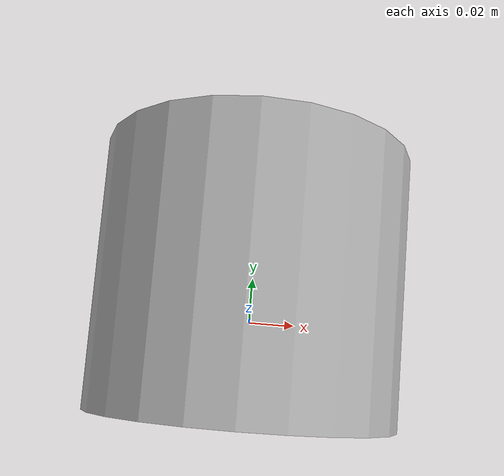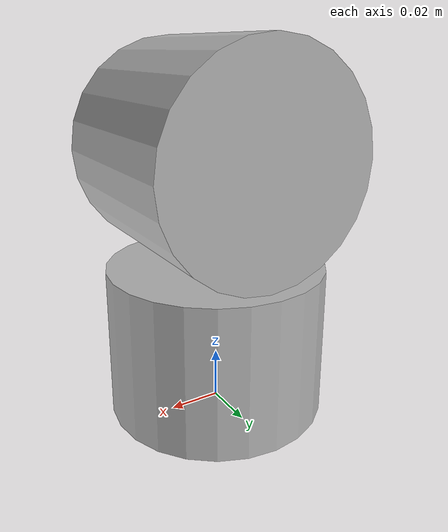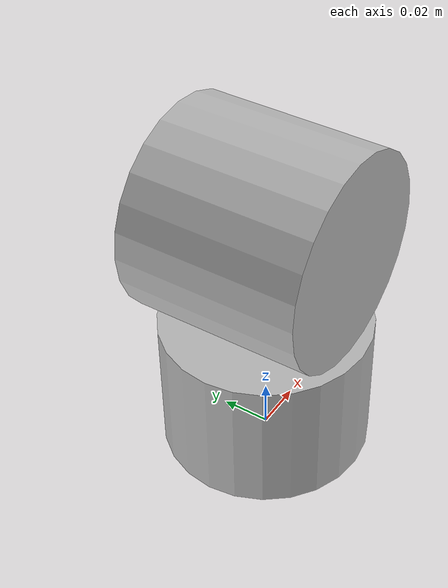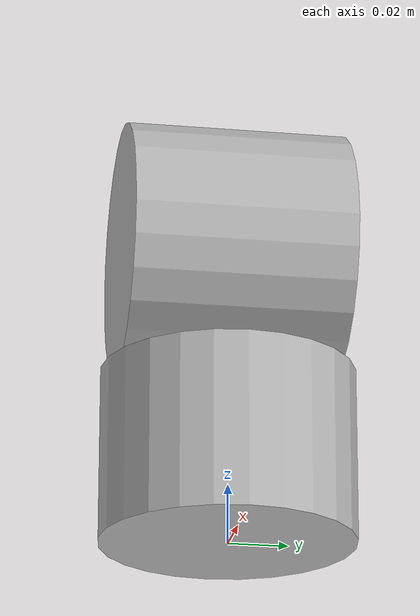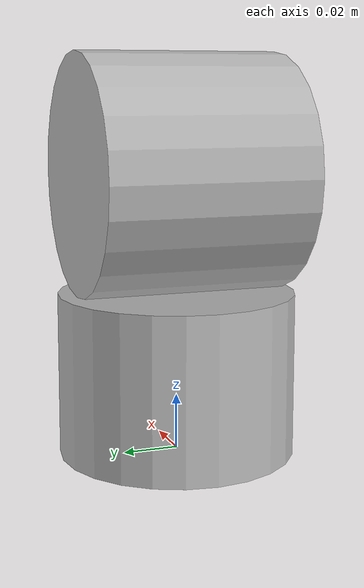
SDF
<?xml version="1.0"?>
<sdf version="1.5">
  <model name="velodyne_dummy">
    <static>true</static>
    <!-- Give the base link a unique name -->
    <link name="base">

      <!-- Offset the base by half the lenght of the cylinder -->
      <pose>0 0 0.029335 0 0 0</pose>
      <inertial>
        <mass>1.2</mass>
        <inertia>
          <ixx>0.001087473</ixx>
          <iyy>0.001087473</iyy>
          <izz>0.001092437</izz>
          <ixy>0</ixy>
          <ixz>0</ixz>
          <iyz>0</iyz>
        </inertia>
      </inertial>

      <collision name="base_collision">
        <geometry>
          <cylinder>
            <!-- Radius and length provided by Velodyne -->
            <radius>.04267</radius>
            <length>.05867</length>
          </cylinder>
        </geometry>
      </collision>

      <!-- The visual is mostly a copy of the collision -->
      <visual name="base_visual">
        <geometry>
          <cylinder>
            <radius>.04267</radius>
            <length>.05867</length>
          </cylinder>
        </geometry>
      </visual>
    </link>

    <!-- Give the base link a unique name -->
    <link name="top">

      <!-- Add a ray sensor, and give it a name -->
      <sensor type="ray" name="sensor">

        <pose>0 0 -0.004645 0.0 0 0</pose>

        <!-- Enable visualization to see the rays in the GUI -->
        <visualize>true</visualize>

        <!-- Set the update rate of the sensor -->
        <update_rate>10</update_rate>
        <ray>

          <!-- The scan element contains the horizontal and vertical beams.
        We are leaving out the vertical beams for this tutorial. -->
          <scan>

            <!-- The horizontal beams -->
            <horizontal>
              <!-- The velodyne has 32 beams(samples) -->
              <samples>32</samples>

              <resolution>10</resolution>

              <!-- Minimum angle in radians -->
              <min_angle>-1.5707</min_angle>

              <!-- Maximum angle in radians -->
              <max_angle>0.7507</max_angle>
            </horizontal>

          </scan>

          <!-- Range defines characteristics of an individual beam -->
          <range>

            <!-- Minimum distance of the beam -->
            <min>0.05</min>

            <!-- Maximum distance of the beam -->
            <max>70</max>

            <!-- Linear resolution of the beam -->
            <resolution>0.02</resolution>
          </range>
        </ray>

        <plugin name="velodyne_pointcloud" filename="libgazebo_ros_ray_sensor.so">
          <ros>
              <remapping>~/out:=cloud</remapping>
          </ros>
          <output_type>sensor_msgs/PointCloud2</output_type>
          <frame_name>lidar_link</frame_name>
        </plugin>

      </sensor>

      <!-- Vertically offset the top cylinder by the length of the bottom
        cylinder and half the length of this cylinder. -->
      <pose>0 0 0.10134 1.5707 0 0</pose>
      <inertial>
        <mass>0.1</mass>
        <inertia>
          <ixx>0.000090623</ixx>
          <iyy>0.000090623</iyy>
          <izz>0.000091036</izz>
          <ixy>0</ixy>
          <ixz>0</ixz>
          <iyz>0</iyz>
        </inertia>
      </inertial>
      <collision name="top_collision">
        <geometry>
          <cylinder>
            <!-- Radius and length provided by Velodyne -->
            <radius>0.04267</radius>
            <length>0.07357</length>
          </cylinder>
        </geometry>
      </collision>

      <!-- The visual is mostly a copy of the collision -->
      <visual name="top_visual">
        <geometry>
          <cylinder>
            <radius>0.04267</radius>
            <length>0.07357</length>
          </cylinder>
        </geometry>
      </visual>
    </link>
    <!-- Each joint must have a unique name -->
    <joint type="revolute" name="joint_lidar">

      <!-- Position the joint at the bottom of the top link -->
      <pose>0 -0.04267 0 0 0 0</pose>

      <!-- Use the base link as the parent of the joint -->
      <parent>base</parent>

      <!-- Use the top link as the child of the joint -->
      <child>top</child>

      <!-- The axis defines the joint's degree of freedom -->
      <axis>

        <!-- Revolve around the z-axis -->
        <xyz>0 1 0</xyz>

        <!-- Limit refers to the range of motion of the joint -->
        <limit>

          <!-- Use a very large number to indicate a continuous revolution -->
          <lower>-10000000000000000</lower>
          <upper>10000000000000000</upper>
        </limit>
      </axis>
    </joint>

    <plugin name="velodyne_spinner" filename="liblidar_3d_sensor.so">
      <velocity>100</velocity>
    </plugin>

  </model>
</sdf>
